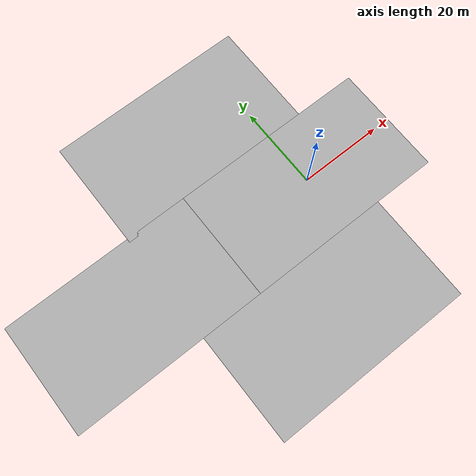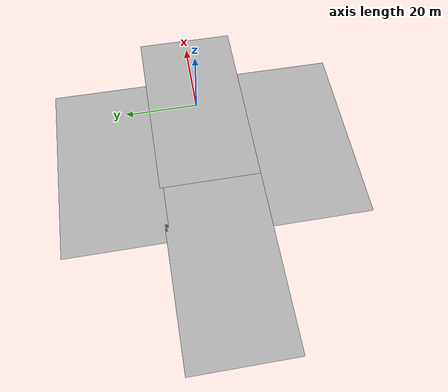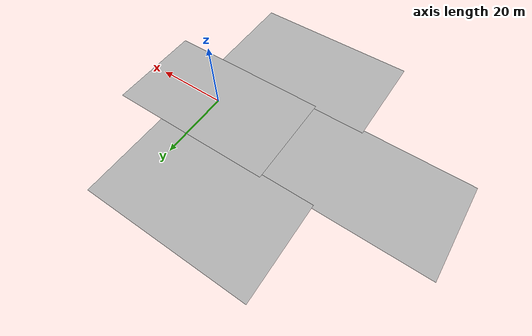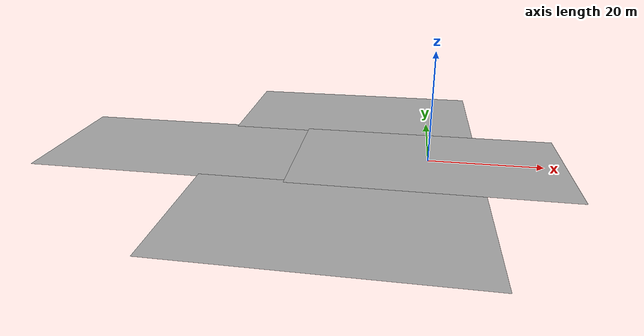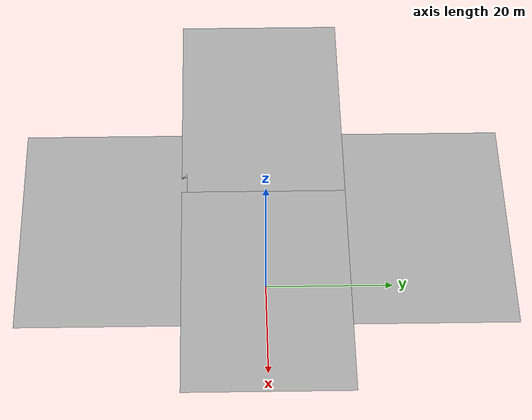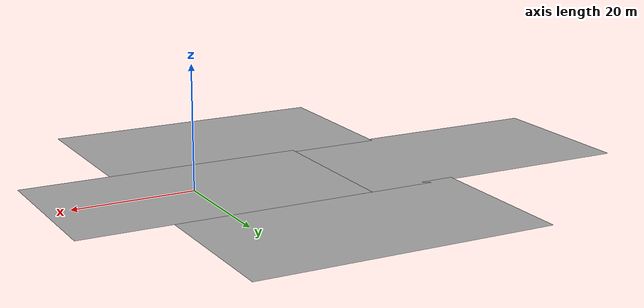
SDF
<sdf version="1.7">
 <world name="driving_world">
  <physics name="1ms" type="ignored">
   <max_step_size>0.001</max_step_size>
   <real_time_factor>1.0</real_time_factor>
  </physics>
  <plugin filename="libignition-gazebo-physics-system.so" name="ignition::gazebo::systems::Physics"/>
  <plugin filename="libignition-gazebo-user-commands-system.so" name="ignition::gazebo::systems::UserCommands"/>
  <plugin filename="libignition-gazebo-scene-broadcaster-system.so" name="ignition::gazebo::systems::SceneBroadcaster"/>
  <plugin filename="libignition-gazebo-imu-system.so" name="ignition::gazebo::systems::Imu"/>
  <plugin filename="libignition-gazebo-sensors-system.so" name="ignition::gazebo::systems::Sensors">
   <render_engine>ogre2</render_engine>
  </plugin>
  <plugin filename="libignition-gazebo-triggered-publisher-system.so" name="ignition::gazebo::systems::TriggeredPublisher">
   <input type="ignition.msgs.Empty" topic="/start"/>
   <output type="ignition.msgs.Twist" topic="/robot_vel">linear: {x: 0.5}, angular: {z: 0.5}</output>
  </plugin>
  <include><uri>model://course</uri></include>
 </world>
</sdf>

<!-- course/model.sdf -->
<sdf version="1.6">
    <model name="course">
        <!--ground should not move so static is true-->
        <static>1</static>
        <link name="link">
            <pose>0 0 0 0 0 0</pose>
                <!--ground should act like a plane normla to the z axis (along the x,y axis)-->
                <collision name="collision">
                    <geometry>
                        <plane>
                            <normal>0 0 1</normal>
                            <size>100 100</size>
                        </plane>
                    </geometry>
                    <!--surface friction is high so friction is only dependent on robot friction values-->
                    <surface>
                        <friction>
                            <ode>
                                <mu>100</mu>
                                <mu2>50</mu2>
                            </ode>
                        </friction>
                    </surface>
                </collision>
                <!--plane visual is abded an dae file of a plane with the road image on it-->
                <visual name="visual">
                    <geometry>
                        <mesh>
                            <uri>untitled.dae</uri>
                        </mesh>
                    </geometry>
                </visual>
            </link>
        <!--rest is adding copoies of the plane so teh robot coudln't see the edge of the course-->
        <link name="link2">
            <pose>-15 -26 -.01 0 0 0</pose>
                <collision name="collision">
                    <geometry>
                        <plane>
                            <normal>0 0 1</normal>
                            <size>100 100</size>
                        </plane>
                    </geometry>
                    <surface>
                        <friction>
                            <ode>
                                <mu>100</mu>
                                <mu2>50</mu2>
                            </ode>
                        </friction>
                    </surface>
                </collision>
                <visual name="visual">
                    <geometry>
                        <mesh>
                            <uri>untitled.dae</uri>
                        </mesh>
                    </geometry>
                </visual>
            </link>
            <link name="link3">
            <pose>-15 26 -.01 0 0 0</pose>
                <collision name="collision">
                    <geometry>
                        <plane>
                            <normal>0 0 1</normal>
                            <size>100 100</size>
                        </plane>
                    </geometry>
                    <surface>
                        <friction>
                            <ode>
                                <mu>100</mu>
                                <mu2>50</mu2>
                            </ode>
                        </friction>
                    </surface>
                </collision>
                <visual name="visual">
                    <geometry>
                        <mesh>
                            <uri>untitled.dae</uri>
                        </mesh>
                    </geometry>
                </visual>
            </link>
            <link name="link4">
            <pose>-46 0 -.01 0 0 0</pose>
                <collision name="collision">
                    <geometry>
                        <plane>
                            <normal>0 0 1</normal>
                            <size>100 100</size>
                        </plane>
                    </geometry>
                    <surface>
                        <friction>
                            <ode>
                                <mu>100</mu>
                                <mu2>50</mu2>
                            </ode>
                        </friction>
                    </surface>
                </collision>
                <visual name="visual">
                    <geometry>
                        <mesh>
                            <uri>untitled.dae</uri>
                        </mesh>
                    </geometry>
                </visual>
            </link>
    </model>
</sdf>
